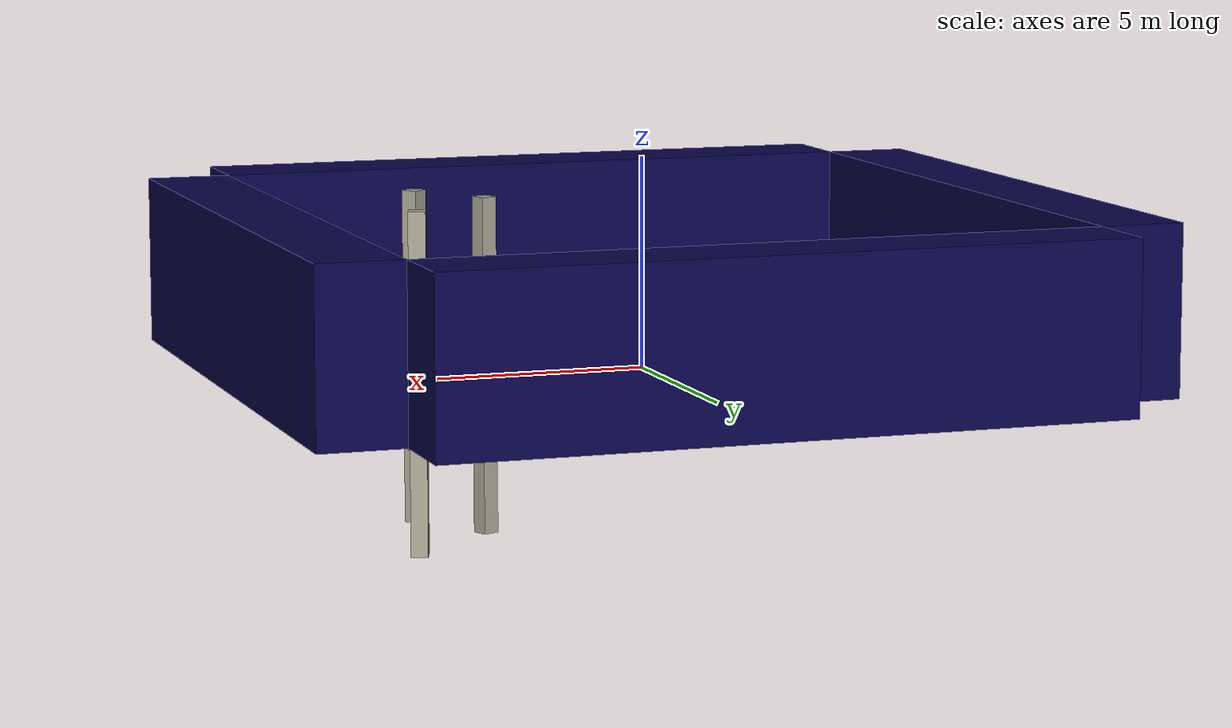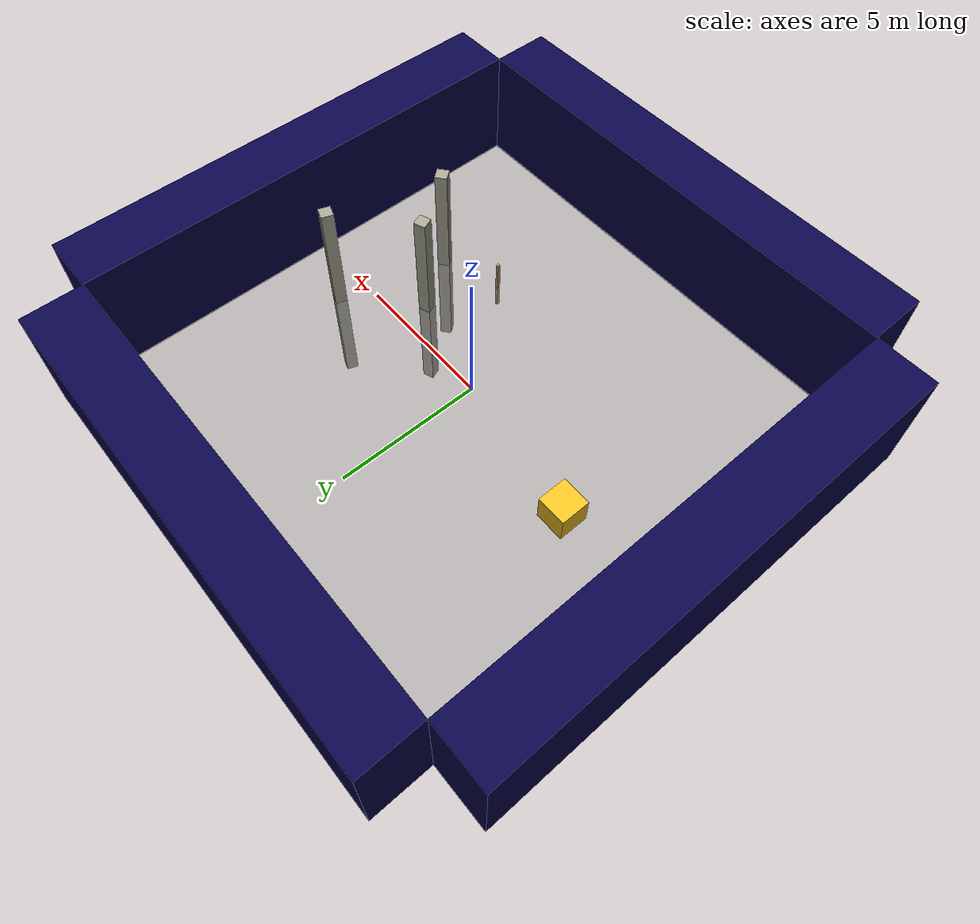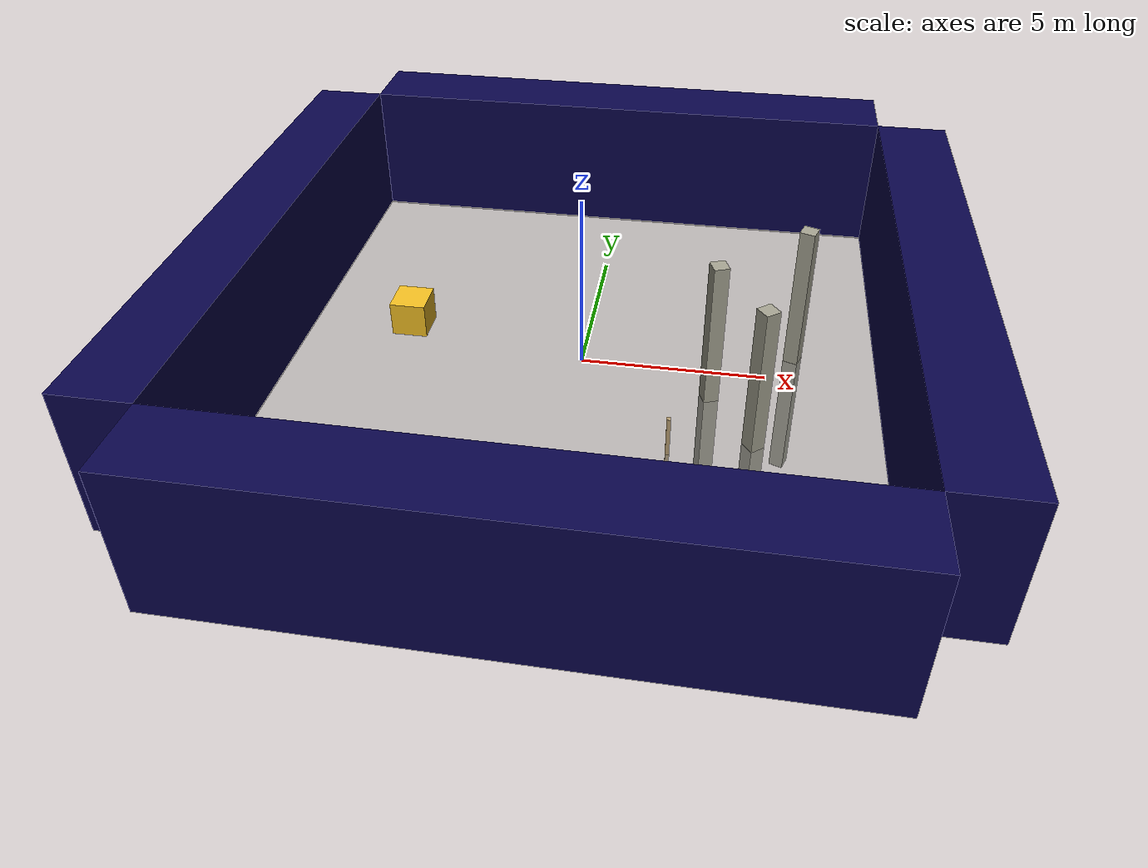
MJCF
<mujoco model="unnamed_model">
  <default>
    <default class="/" />
    <default class="border/" />
    <default class="border_1/" />
    <default class="border_2/" />
    <default class="border_3/" />
    <default class="light/" />
    <default class="agent/" />
    <default class="stone0/" />
    <default class="stone1/" />
    <default class="apple/" />
    <default class="apple_1/" />
  </default>
  <worldbody>
    <body name="border/">
      <body name="border/border" pos="0 9 2">
        <geom name="border/border_geom" class="border/" type="box" size="8.0 1.0 2.0" rgba="0.035 0.016 0.29 1.0" />
      </body>
    </body>
    <body name="border_1/">
      <body name="border_1/border" pos="0 -9 2">
        <geom name="border_1/border_geom" class="border_1/" type="box" size="8.0 1.0 2.0" rgba="0.035 0.016 0.29 1.0" />
      </body>
    </body>
    <body name="border_2/">
      <body name="border_2/border" pos="9 0 2">
        <geom name="border_2/border_geom" class="border_2/" type="box" size="1.0 8.0 2.0" rgba="0.035 0.016 0.29 1.0" />
      </body>
    </body>
    <body name="border_3/">
      <body name="border_3/border" pos="-9 0 2">
        <geom name="border_3/border_geom" class="border_3/" type="box" size="1.0 8.0 2.0" rgba="0.035 0.016 0.29 1.0" />
      </body>
    </body>
    <body name="light/">
      <body name="light/light" pos="0 0 15">
        <geom name="light/light_geom" class="light/" size="0.5" rgba="1.0 1.0 1.0 0.0" />
        <light name="light//unnamed_light_0" class="light/" />
      </body>
    </body>
    <body euler="0 0 270.0548387197569" name="agent/" pos="-5.0806500000000003 0.89569999999999972 0.5">
      <joint name="agent/boxagent_freeJoint/" class="/" type="free" />
      <body name="agent/agent" pos="0 0 0" euler="0 0 0">
        <geom name="agent/boxagent_geom" class="agent/" type="box" size="0.5 0.5 0.5" rgba="0.949 0.7451 0.1333 1.0" euler="0 0 0" />
        <camera name="agent/boxagent_camera" class="agent/" pos="0 -0.59999999999999998 0" euler="90 0 0" />
      </body>
    </body>
    <body name="stone0/">
      <body name="stone0/stone0" pos="4.7559500000000003 -2.7690000000000001 0.10000000000000001" euler="0 0 -52.12747937968372">
        <geom name="stone0/stone_geom" class="stone0/" type="box" size="0.2 0.2 4.0" rgba="0.6470588235294118 0.6392156862745098 0.5686274509803921 1.0" />
      </body>
    </body>
    <body name="stone1/">
      <body name="stone1/stone1" pos="2.6600000000000001 -3.3872 0.10000000000000001" euler="0 0 4.414698078274256">
        <geom name="stone1/stone_geom" class="stone1/" type="box" size="0.05 0.05 1.0" rgba="0.6980392156862745 0.6 0.43137254901960786 1.0" />
      </body>
    </body>
    <body name="apple/">
      <body name="apple/apple" pos="5.7613000000000003 1.0022000000000002 0.10000000000000001" euler="0 0 69.972350667463445">
        <geom name="apple/apple_geom" class="apple/" type="box" size="0.2 0.2 4.0" rgba="0.6470588235294118 0.6392156862745098 0.5686274509803921 1.0" />
      </body>
    </body>
    <body name="apple_1/">
      <body name="apple_1/apple" pos="3.55355 -1.0225 0.10000000000000001" euler="0 0 -158.95079638354969">
        <geom name="apple_1/apple_geom" class="apple_1/" type="box" size="0.2 0.2 4.0" rgba="0.6470588235294118 0.6392156862745098 0.5686274509803921 1.0" />
      </body>
    </body>
    <geom name="base_plane" class="/" type="plane" size="8 8 0.10000000000000001" />
  </worldbody>
</mujoco>
